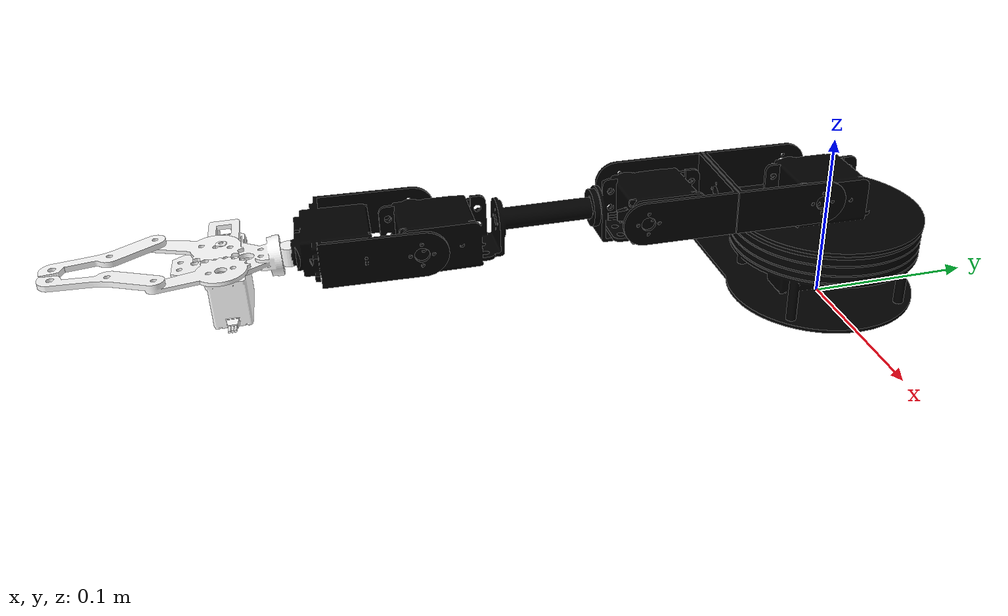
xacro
<?xml version="1.0" ?>
<robot xmlns:xacro="http://ros.org/wiki/xacro">

  <xacro:include filename="inertial_macros.xacro"/>

  <!-- World link -->
  <link name="world"/>

  <!-- Fix base_link to Gazebo world -->
  <joint name="fixed" type="fixed">
    <parent link="world"/>
    <child link="base_link"/>
  </joint>

  <!-- Base link  -->
  <link name="base_link"/>

  <joint name="base_plate_joint" type="fixed">
    <parent link="base_link"/>
    <child link="base_plate"/>
    <origin xyz="0 0 0"/>
  </joint>

  <!-- Base plate -->
  <link name="base_plate">
    <visual>
      <origin xyz="0 0 0.001"/>
        <geometry>
          <mesh filename="package://akabot_description/meshes/base_cylinder.stl" scale ="0.00001 0.00001 0.00001"/>
        </geometry>
        <material name="black">
          <color rgba="0 0 0 1"/>
        </material>
    </visual>
	  <collision>
      <origin xyz="0 0 0.001"/>
        <geometry>
          <mesh filename="package://akabot_description/meshes/base_cylinder.stl" scale ="0.00001 0.00001 0.00001"/>
        </geometry>
    </collision>

    <xacro:box_inertia mass="0.527" length="0.215" width="0.112" height="0.052">
      <origin xyz="0 0 0" rpy="0 0 0"/>
    </xacro:box_inertia>
  </link>

  <joint name="top_plate_joint" type="revolute">
    <parent link="base_plate"/>
    <child link="top_plate"/>
    <origin rpy="0 0 0" xyz="0 0 0.048"/>
    <axis xyz="0 0 1" />
    <limit effort="1000.0" lower="1.56" upper="4.68" velocity="1.0" />
  </joint>

  <!-- Top plate -->
  <link name="top_plate">
	  <visual>
      <origin xyz="0 0 0"/>
        <geometry>
          <mesh filename="package://akabot_description/meshes/top_plate.stl" scale ="0.0001 0.0001 0.0001"/>
        </geometry>
        <material name="black"/>
    </visual>
	  <collision>
      <geometry>
        <mesh filename="package://akabot_description/meshes/top_plate.stl" scale ="0.0001 0.0001 0.0001"/>
      </geometry>
    </collision>

    <xacro:cylinder_inertia mass="0.115" length="0.002" radius="0.055">
      <origin xyz="0 0 0" rpy="0 0 0"/>
    </xacro:cylinder_inertia>
  </link>

  <joint name="lower_arm_joint" type="revolute">
    <parent link="top_plate"/>
    <child link="lower_arm"/>
    <origin xyz="0 0.019 0.028"/>
    <axis xyz="1 0 0" />
    <limit effort="1000.0" lower="0.0" upper="3.12" velocity="1.0" />
  </joint>

  <!-- Lower arm -->
  <link name="lower_arm">
    <visual>
      <geometry>
        <mesh filename="package://akabot_description/meshes/lower_arm.stl" scale ="0.0001 0.0001 0.0001"/>
      </geometry>
      <material name="black"/>
    </visual>
    <collision>
      <origin xyz="0 0 0"/>
      <geometry>
        <mesh filename="package://akabot_description/meshes/lower_arm.stl" scale ="0.0001 0.0001 0.0001"/>
      </geometry>
    </collision>

    <xacro:box_inertia mass="0.047" length="0.13" width="0.056" height="0.025">
      <origin xyz="0 0 0" rpy="0 0 0"/>
    </xacro:box_inertia>
  </link>

  <joint name="upper_arm_joint" type="revolute">
    <parent link="lower_arm"/>
    <child link="upper_arm"/>
    <origin xyz="-0.025 0.1 0"/>
    <axis xyz="1 0 0" />
    <limit effort="1000.0" lower="-1.7" upper="1.7" velocity="1.0" />
  </joint>

  <!-- Upper arm -->
  <link name="upper_arm">
    <visual>
      <origin rpy="0 1.59 0" xyz="0 0 0"/>
      <geometry>
        <mesh filename="package://akabot_description/meshes/upper_arm.stl" scale ="0.0001 0.0001 0.0001"/>
      </geometry>
      <material name="black"/>
    </visual>
    <collision>
      <origin rpy="0 1.59 0" xyz="0 0 0"/>
      <geometry>
        <mesh filename="package://akabot_description/meshes/upper_arm.stl" scale ="0.0001 0.0001 0.0001"/>
      </geometry>
    </collision>

    <xacro:box_inertia mass="0.105" length="0.185" width="0.036" height="0.025">
      <origin xyz="0 0 0" rpy="0 0 0"/>
    </xacro:box_inertia>
  </link>

  <joint name="wrist_joint" type="revolute">
    <parent link="upper_arm"/>
    <child link="wrist"/>
    <origin xyz="0.011 0.125 0"/>
    <axis xyz="1 0 0" />
    <limit effort="1000.0" lower="-1.7" upper="1.7" velocity="1.0" />
  </joint>

  <!-- Wrist -->
  <link name="wrist">
    <visual>
      <geometry>
        <mesh filename="package://akabot_description/meshes/wrist.stl" scale ="0.0001 0.0001 0.0001"/>
      </geometry>
      <material name="black"/>
    </visual>
    <collision>
      <origin rpy="0 0 0" xyz="0 0 0"/>
      <geometry>
        <mesh filename="package://akabot_description/meshes/wrist.stl" scale ="0.0001 0.0001 0.0001"/>
      </geometry>
    </collision>

    <xacro:box_inertia mass="0.082" length="0.065" width="0.057" height="0.025">
      <origin xyz="0 0 0" rpy="0 0 0"/>
    </xacro:box_inertia>
  </link>

  <joint name="wrist_roll_joint" type="revolute">
    <parent link="wrist"/>
    <child link="wrist_roll_link"/>
    <origin xyz="0 0.063 0" rpy="0 0 0"/>
    <axis xyz="0 0 1"/>
    <limit effort="1000.0" lower="-3.14" upper="3.14" velocity="1.0" />
  </joint>

  <link name="wrist_roll_link">
    <visual>
      <origin xyz="0 0.0025 0"/>
      <geometry>
        <cylinder length="0.01" radius="0.005"/>
      </geometry>
      <material name="white">
        <color rgba="1 1 1 1"/>
      </material>
    </visual>
    <collision>
      <origin xyz="0 0 0"/>
      <geometry>
        <cylinder length="0.01" radius="0.00005"/>
      </geometry>
    </collision>

    <xacro:cylinder_inertia mass="0.02" length="0.01" radius="0.015">
      <origin xyz="0 0 0" rpy="0 0 0"/>
    </xacro:cylinder_inertia>
  </link>

  <!-- Updated claw base joint to move the claw back -->
  <joint name="claw_base_joint" type="revolute">
    <axis xyz="0 1 0" />
    <limit effort="1000.0" lower="-3.17" upper="0.0" velocity="1.0" />
    <parent link="wrist_roll_link"/>
    <child link="claw_base"/>
    <!-- Moved claw base back by adjusting the xyz values -->
    <origin xyz="0 0.0055 0"/>
  </joint>

  <!-- Claw base -->
  <link name="claw_base">
    <visual>
      <origin rpy="0 3.18 0" xyz="0 0 0"/>
      <geometry>
        <mesh filename="package://akabot_description/meshes/claw_base.stl" scale ="0.0001 0.0001 0.0001"/>
      </geometry>
      <material name="white">
        <color rgba="1 1 1 1"/>
      </material>
    </visual>
    <collision>
      <origin rpy="0 3.18 0" xyz="0 0 0"/>
      <geometry>
        <mesh filename="package://akabot_description/meshes/claw_base.stl" scale ="0.0001 0.0001 0.0001"/>
      </geometry>
    </collision>

    <xacro:box_inertia mass="0.079" length="0.07" width="0.05" height="0.015">
      <origin xyz="0 0 0" rpy="0 0 0"/>
    </xacro:box_inertia>
  </link>

  <joint name="right_claw_joint" type="revolute">
    <parent link="claw_base"/>
    <child link="right_claw"/>
    <origin rpy="0 0 -0.31" xyz="0.011 0.0335 0.00155"/>
    <axis xyz="0 0 1" />
    <limit effort="1000.0" lower="-0.5" upper="0.0" velocity="1.0" />
  </joint>

  <!-- Right claw  -->
  <link name="right_claw">
    <visual>
      <origin rpy="0 0 0" xyz="0 0 0"/>
      <geometry>
        <mesh filename="package://akabot_description/meshes/right_claw.stl" scale ="0.0001 0.0001 0.0001"/>
      </geometry>
      <material name="white"/>
    </visual>
    <collision>
      <origin rpy="0 0 0" xyz="0 0 0"/>
      <geometry>
        <mesh filename="package://akabot_description/meshes/right_claw.stl" scale ="0.0001 0.0001 0.0001"/>
      </geometry>
    </collision>

    <xacro:box_inertia mass="0.019" length="0.1" width="0.01" height="0.012">
      <origin xyz="0 0 0" rpy="0 0 0"/>
    </xacro:box_inertia>
  </link>

  <!-- Left claw -->
  <link name="left_claw">
    <visual>
      <origin rpy="0 0 0" xyz="0 0 0"/>
      <geometry>
        <mesh filename="package://akabot_description/meshes/left_claw.stl" scale ="0.0001 0.0001 0.0001"/>
      </geometry>
      <material name="white"/>
    </visual>
    <collision>
      <origin rpy="0 0 0" xyz="0 0 0"/>
      <geometry>
        <mesh filename="package://akabot_description/meshes/left_claw.stl" scale ="0.0001 0.0001 0.0001"/>
      </geometry>
    </collision>

    <xacro:box_inertia mass="0.019" length="0.1" width="0.01" height="0.012">
      <origin xyz="0 0 0" rpy="0 0 0"/>
    </xacro:box_inertia>
  </link>

  <joint name="left_claw_joint" type="revolute">
    <parent link="claw_base"/>
    <child link="left_claw"/>
    <origin rpy="0 0 0.22" xyz="-0.016 0.030 0"/>
    <axis xyz="0 0 1" />
    <limit effort="1000.0" lower="0.0" upper="0.5" velocity="1.0" />
    <mimic joint="right_claw_joint" multiplier="-1" offset="0" />
  </joint>

</robot>
